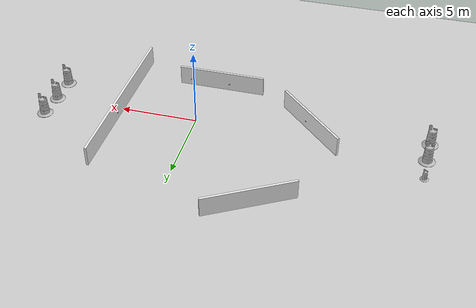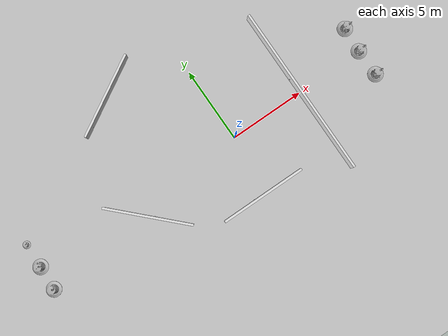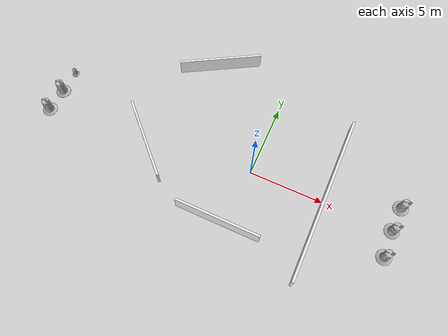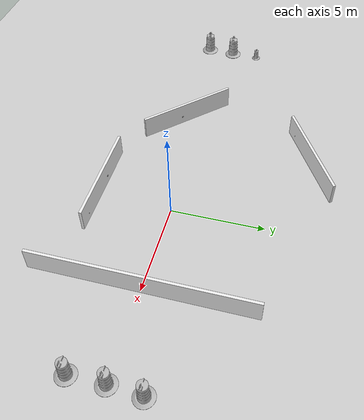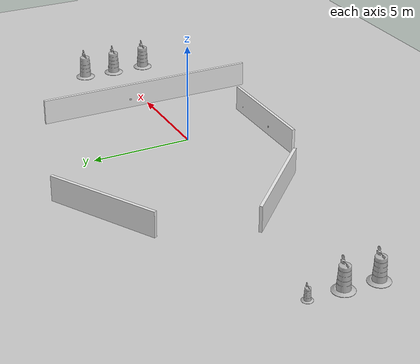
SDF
<sdf version="1.6">
 <world name="default">
  <light name="sun" type="directional">
   <pose>0 0 10 0 -0 0</pose>
   <diffuse>0.8 0.8 0.8 1</diffuse>
   <specular>0.1 0.1 0.1 1</specular>
   <attenuation>
    <range>1000</range>
    <constant>0.9</constant>
    <linear>0.01</linear>
    <quadratic>0.001</quadratic>
   </attenuation>
   <direction>-0.5 0.5 -1</direction>
  </light>
  <gravity>0 0 -9.8</gravity>
  <magnetic_field>6e-06 2.3e-05 -4.2e-05</magnetic_field>
  <atmosphere type="adiabatic"/>
  <physics name="default_physics" default="0" type="ode">
   <max_step_size>0.01</max_step_size>
   <real_time_factor>1</real_time_factor>
   <real_time_update_rate>100</real_time_update_rate>
   <ode>
    <solver>
     <type>quick</type>
     <iters>100</iters>
     <precon_iters>0</precon_iters>
     <sor>1</sor>
     <use_dynamic_moi_rescaling>0</use_dynamic_moi_rescaling>
    </solver>
    <constraints>
     <cfm>0</cfm>
     <erp>0.5</erp>
     <contact_max_correcting_vel>1000</contact_max_correcting_vel>
     <contact_surface_layer>0</contact_surface_layer>
    </constraints>
   </ode>
  </physics>
  <scene><ambient>0.4 0.4 0.4 1</ambient><background>0.7 0.7 0.7 1</background><shadows>0</shadows></scene>
  <spherical_coordinates>
   <surface_model>EARTH_WGS84</surface_model>
   <latitude_deg>0</latitude_deg>
   <longitude_deg>0</longitude_deg>
   <elevation>0</elevation>
   <heading_deg>0</heading_deg>
  </spherical_coordinates>
  <model name="Construction Barrel">
   <static>1</static>
   <link name="link">
    <inertial>
     <pose>0 0 0.4 0 -0 0</pose>
     <mass>500</mass>
     <inertia><ixx>51.2096</ixx><iyy>51.2096</iyy><izz>25</izz><ixy>0</ixy><ixz>0</ixz><iyz>0</iyz></inertia>
    </inertial>
    <collision name="collision">
     <geometry>
      <mesh><uri>model://construction_barrel/meshes/construction_barrel.dae</uri><scale>0.5 0.5 0.5</scale></mesh>
     </geometry>
    </collision>
    <visual name="visual">
     <geometry>
      <mesh><uri>model://construction_barrel/meshes/construction_barrel.dae</uri><scale>0.5 0.5 0.5</scale></mesh>
     </geometry>
    </visual>
   </link>
   <pose>-14.5057 1.82601 0 0 -0 0</pose>
  </model>
  <model name="Construction Barrel_clone">
   <static>1</static>
   <link name="link">
    <inertial>
     <pose>0 0 0.4 0 -0 0</pose>
     <mass>500</mass>
     <inertia><ixx>51.2096</ixx><iyy>51.2096</iyy><izz>25</izz><ixy>0</ixy><ixz>0</ixz><iyz>0</iyz></inertia>
    </inertial>
    <collision name="collision">
     <geometry>
      <mesh><uri>model://construction_barrel/meshes/construction_barrel.dae</uri><scale>1 1 1</scale></mesh>
     </geometry>
    </collision>
    <visual name="visual">
     <geometry>
      <mesh><uri>model://construction_barrel/meshes/construction_barrel.dae</uri><scale>1 1 1</scale></mesh>
     </geometry>
    </visual>
   </link>
   <pose>-14.5548 0.199441 0 0 -0 0</pose>
  </model>
  <model name="Construction Barrel_clone_0">
   <static>1</static>
   <link name="link">
    <inertial>
     <pose>0 0 0.4 0 -0 0</pose>
     <mass>500</mass>
     <inertia><ixx>51.2096</ixx><iyy>51.2096</iyy><izz>25</izz><ixy>0</ixy><ixz>0</ixz><iyz>0</iyz></inertia>
    </inertial>
    <collision name="collision">
     <geometry>
      <mesh><uri>model://construction_barrel/meshes/construction_barrel.dae</uri><scale>1 1 1</scale></mesh>
     </geometry>
    </collision>
    <visual name="visual">
     <geometry>
      <mesh><uri>model://construction_barrel/meshes/construction_barrel.dae</uri><scale>1 1 1</scale></mesh>
     </geometry>
    </visual>
   </link>
   <pose>-14.6395 -1.42783 0 0 -0 0</pose>
  </model>
  <model name="Construction Barrel_clone_1">
   <static>1</static>
   <link name="link">
    <inertial>
     <pose>0 0 0.4 0 -0 0</pose>
     <mass>500</mass>
     <inertia><ixx>51.2096</ixx><iyy>51.2096</iyy><izz>25</izz><ixy>0</ixy><ixz>0</ixz><iyz>0</iyz></inertia>
    </inertial>
    <collision name="collision">
     <geometry>
      <mesh><uri>model://construction_barrel/meshes/construction_barrel.dae</uri><scale>1 1 1</scale></mesh>
     </geometry>
    </collision>
    <visual name="visual">
     <geometry>
      <mesh><uri>model://construction_barrel/meshes/construction_barrel.dae</uri><scale>1 1 1</scale></mesh>
     </geometry>
    </visual>
   </link>
   <pose>9.70809 1.72229 0 0 -0 0</pose>
  </model>
  <model name="Construction Barrel_clone_2">
   <static>1</static>
   <link name="link">
    <inertial>
     <pose>0 0 0.4 0 -0 0</pose>
     <mass>500</mass>
     <inertia><ixx>51.2096</ixx><iyy>51.2096</iyy><izz>25</izz><ixy>0</ixy><ixz>0</ixz><iyz>0</iyz></inertia>
    </inertial>
    <collision name="collision">
     <geometry>
      <mesh><uri>model://construction_barrel/meshes/construction_barrel.dae</uri><scale>1 1 1</scale></mesh>
     </geometry>
    </collision>
    <visual name="visual">
     <geometry>
      <mesh><uri>model://construction_barrel/meshes/construction_barrel.dae</uri><scale>1 1 1</scale></mesh>
     </geometry>
    </visual>
   </link>
   <pose>9.63892 -1.74012 0 0 -0 0</pose>
  </model>
  <model name="Construction Barrel_clone_3">
   <static>1</static>
   <link name="link">
    <inertial>
     <pose>0 0 0.4 0 -0 0</pose>
     <mass>500</mass>
     <inertia><ixx>51.2096</ixx><iyy>51.2096</iyy><izz>25</izz><ixy>0</ixy><ixz>0</ixz><iyz>0</iyz></inertia>
    </inertial>
    <collision name="collision">
     <geometry>
      <mesh><uri>model://construction_barrel/meshes/construction_barrel.dae</uri><scale>1 1 1</scale></mesh>
     </geometry>
    </collision>
    <visual name="visual">
     <geometry>
      <mesh><uri>model://construction_barrel/meshes/construction_barrel.dae</uri><scale>1 1 1</scale></mesh>
     </geometry>
    </visual>
   </link>
   <pose>9.61273 0.053111 0 0 -0 0</pose>
  </model>
  <model name="neobotix_ground_plane">
   <static>1</static>
   <link name="link">
    <collision name="collision">
     <geometry><plane><normal>0 0 1</normal><size>100 100</size></plane></geometry>
     <surface><friction><ode><mu>100</mu><mu2>50</mu2></ode></friction></surface>
    </collision>
    <visual name="visual">
     <cast_shadows>0</cast_shadows>
     <geometry><plane><normal>0 0 1</normal><size>100 100</size></plane></geometry>
     <material>
      <script>
       <uri>model://neobotix_ground_plane/materials/scripts</uri>
       <uri>model://neobotix_ground_plane/materials/textures/</uri>
       <name>NeobotixGroundPlane/Image</name>
      </script>
     </material>
    </visual>
   </link>
   <pose>15.5395 -0.113375 0 0 -0 0</pose>
  </model>
  <audio><device>default</device></audio>
  <model name="office_env_w3">
   <pose>-0.624711 -4 0 0 -0 0</pose>
   <link name="Wall_10">
    <visual name="Wall_10_Visual_0">
     <geometry><box><size>5.733 0.15 2.5</size></box></geometry>
     <material>
      <script>
       <uri>model://office_env_w/materials/scripts</uri>
       <uri>model://office_env_w/materials/textures</uri>
       <name>wall_white</name>
      </script>
     </material>
     <meta><layer>0</layer></meta>
    </visual>
    <collision name="Wall_10_Collision_0"><geometry><box><size>5.733 0.15 2.5</size></box></geometry></collision>
   </link>
   <static>1</static>
  </model>
  <model name="Ar_tags">
   <link name="link_1">
    <visual name="visual">
     <geometry><mesh><uri>model://Ar_tags/meshes/Ar_tag.dae</uri><scale>1 1 1</scale></mesh></geometry>
     <material>
      <script>
       <uri>model://Ar_tags/materials/scripts</uri>
       <uri>model://Ar_tags/materials/textures</uri>
       <name>Ar_tags</name>
      </script>
     </material>
    </visual>
    <collision name="collision">
     <geometry><mesh><uri>model://Ar_tags/meshes/Ar_tag.dae</uri><scale>1 1 1</scale></mesh></geometry>
    </collision>
   </link>
   <static>1</static>
   <pose>-1.17591 -3.91126 0.42 -1.5708 0 0</pose>
  </model>
  <model name="office_env_w2">
   <pose>5 0 0 0 -0 1.5708</pose>
   <link name="Wall_10">
    <visual name="Wall_10_Visual_0">
     <geometry><box><size>11.466 0.15 2.5</size></box></geometry>
     <material>
      <script>
       <uri>model://office_env_w/materials/scripts</uri>
       <uri>model://office_env_w/materials/textures</uri>
       <name>wall_white</name>
      </script>
     </material>
     <meta><layer>0</layer></meta>
    </visual>
    <collision name="Wall_10_Collision_0"><geometry><box><size>11.466 0.15 2.5</size></box></geometry></collision>
   </link>
   <static>1</static>
  </model>
  <model name="Ar_tags_0">
   <link name="link_1">
    <visual name="visual">
     <geometry><mesh><uri>model://Ar_tags/meshes/Ar_tag.dae</uri><scale>1 1 1</scale></mesh></geometry>
     <material>
      <script>
       <uri>model://Ar_tags/materials/scripts</uri>
       <uri>model://Ar_tags/materials/textures</uri>
       <name>Ar_tags</name>
      </script>
     </material>
    </visual>
    <collision name="collision">
     <geometry><mesh><uri>model://Ar_tags/meshes/Ar_tag.dae</uri><scale>1 1 1</scale></mesh></geometry>
    </collision>
   </link>
   <static>1</static>
   <pose>4.91452 1 0.42 -1.5708 0 1.5708</pose>
  </model>
  <model name="office_env_w3_0">
   <pose>-7.21667 -1.03905 0 0 0 -0.785398</pose>
   <link name="Wall_10">
    <visual name="Wall_10_Visual_0">
     <geometry><box><size>5.733 0.15 2.5</size></box></geometry>
     <material>
      <script>
       <uri>model://office_env_w/materials/scripts</uri>
       <uri>model://office_env_w/materials/textures</uri>
       <name>wall_white</name>
      </script>
     </material>
     <meta><layer>0</layer></meta>
    </visual>
    <collision name="Wall_10_Collision_0"><geometry><box><size>5.733 0.15 2.5</size></box></geometry></collision>
   </link>
   <static>1</static>
  </model>
  <model name="Ar_tags_1">
   <link name="link_1">
    <visual name="visual">
     <geometry><mesh><uri>model://Ar_tags/meshes/Ar_tag.dae</uri><scale>1 1 1</scale></mesh></geometry>
     <material>
      <script>
       <uri>model://Ar_tags/materials/scripts</uri>
       <uri>model://Ar_tags/materials/textures</uri>
       <name>Ar_tags</name>
      </script>
     </material>
    </visual>
    <collision name="collision">
     <geometry><mesh><uri>model://Ar_tags/meshes/Ar_tag.dae</uri><scale>1 1 1</scale></mesh></geometry>
    </collision>
   </link>
   <static>1</static>
   <pose>-6.8908 -1.24758 0.42 -1.5708 0 -0.785398</pose>
  </model>
  <model name="office_env_w3_1">
   <pose>-5.16811 6.6196 0 0 -0 0.523598</pose>
   <link name="Wall_10">
    <visual name="Wall_10_Visual_0">
     <geometry><box><size>5.733 0.15 2.5</size></box></geometry>
     <material>
      <script>
       <uri>model://office_env_w/materials/scripts</uri>
       <uri>model://office_env_w/materials/textures</uri>
       <name>wall_white</name>
      </script>
     </material>
     <meta><layer>0</layer></meta>
    </visual>
    <collision name="Wall_10_Collision_0"><geometry><box><size>5.733 0.15 2.5</size></box></geometry></collision>
   </link>
   <static>1</static>
  </model>
  <model name="Ar_tags_3">
   <link name="link_1">
    <visual name="visual">
     <geometry><mesh><uri>model://Ar_tags/meshes/Ar_tag.dae</uri><scale>0.5 0.5 0.5</scale></mesh></geometry>
     <material>
      <script>
       <uri>model://Ar_tags/materials/scripts</uri>
       <uri>model://Ar_tags/materials/textures</uri>
       <name>Ar_tags</name>
      </script>
     </material>
    </visual>
    <collision name="collision">
     <geometry><mesh><uri>model://Ar_tags/meshes/Ar_tag.dae</uri><scale>0.5 0.5 0.5</scale></mesh></geometry>
    </collision>
   </link>
   <static>1</static>
   <pose>-6.90449 5.52305 0.38 -1.5708 -0 -2.61799</pose>
  </model>
  <model name="Ar_tags_2">
   <link name="link_1">
    <visual name="visual">
     <geometry><mesh><uri>model://Ar_tags/meshes/Ar_tag.dae</uri><scale>0.5 0.5 0.5</scale></mesh></geometry>
     <material>
      <script>
       <uri>model://Ar_tags/materials/scripts</uri>
       <uri>model://Ar_tags/materials/textures</uri>
       <name>Ar_tags</name>
      </script>
     </material>
    </visual>
    <collision name="collision">
     <geometry><mesh><uri>model://Ar_tags/meshes/Ar_tag.dae</uri><scale>0.5 0.5 0.5</scale></mesh></geometry>
    </collision>
   </link>
   <static>1</static>
   <pose>1.50006 -3.9149 0.377308 -1.5708 0 0</pose>
  </model>
 </world>
</sdf>
